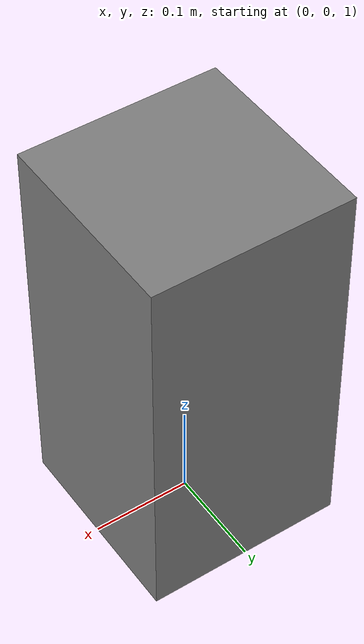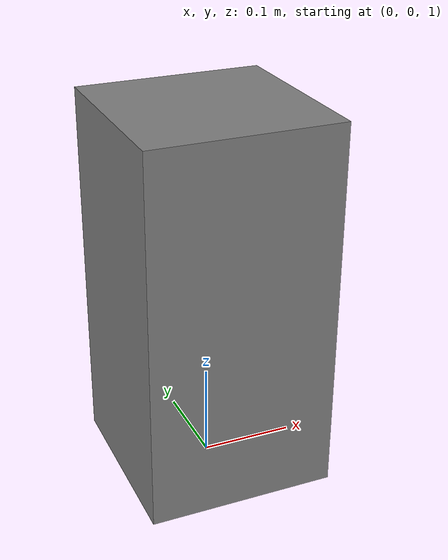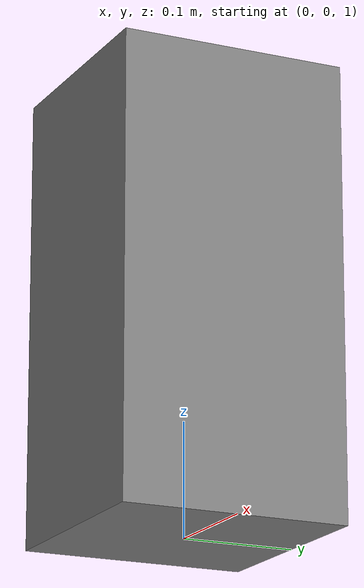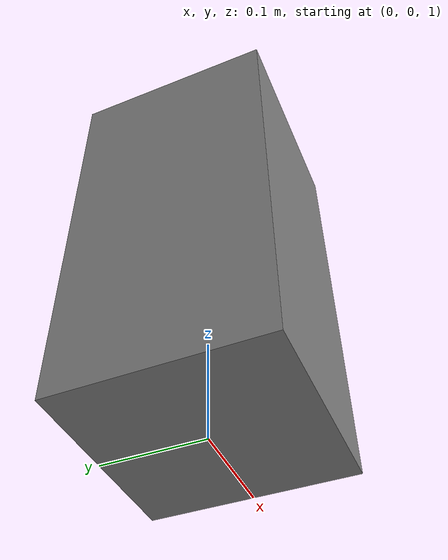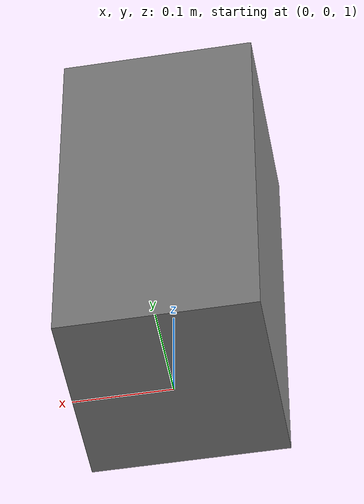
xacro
<?xml version="1.0"?>
<robot xmlns:xacro="http://ros.org/wiki/xacro">

  <!-- Base link -->
  <link name="base_link" />

  <!-- Fixed joint to torso with visible offset for RViz testing -->
  <joint name="base_to_torso" type="fixed">
    <parent link="base_link"/>
    <child link="torso"/>
    <origin xyz="0 0 1.0" rpy="0 0 0"/>
  </joint>

  <!-- Torso link -->
  <link name="torso">
    <!-- Visual and collision placeholder -->
    <visual>
      <geometry>
        <box size="0.2 0.2 0.4"/>
      </geometry>
      <origin xyz="0 0 0.2" rpy="0 0 0"/>
      <material name="grey">
        <color rgba="0.5 0.5 0.5 1"/>
      </material>
    </visual>

    <collision>
      <geometry>
        <box size="0.2 0.2 0.4"/>
      </geometry>
      <origin xyz="0 0 0.2" rpy="0 0 0"/>
    </collision>

    <inertial>
      <origin xyz="0 0 0.2" />
      <mass value="1.0"/>
      <inertia ixx="0.1" ixy="0.0" ixz="0.0"
               iyy="0.1" iyz="0.0"
               izz="0.1"/>
    </inertial>
  </link>

</robot>
